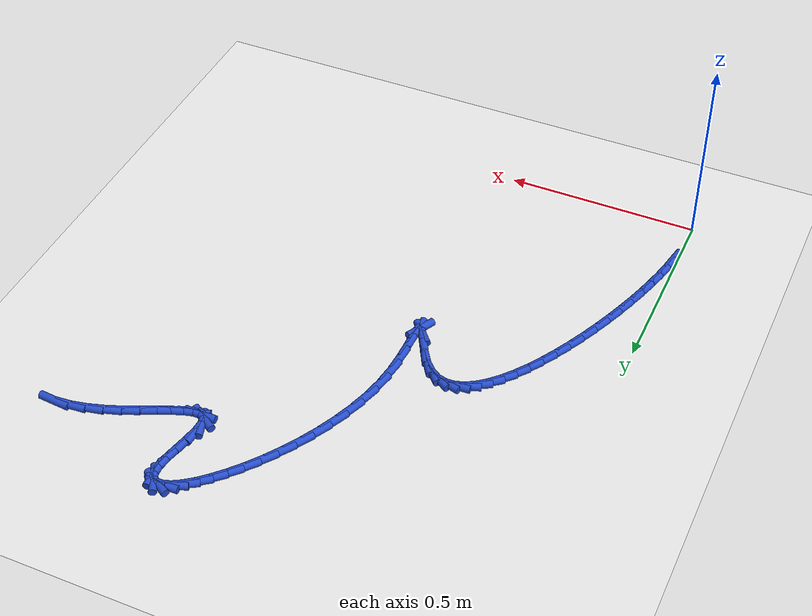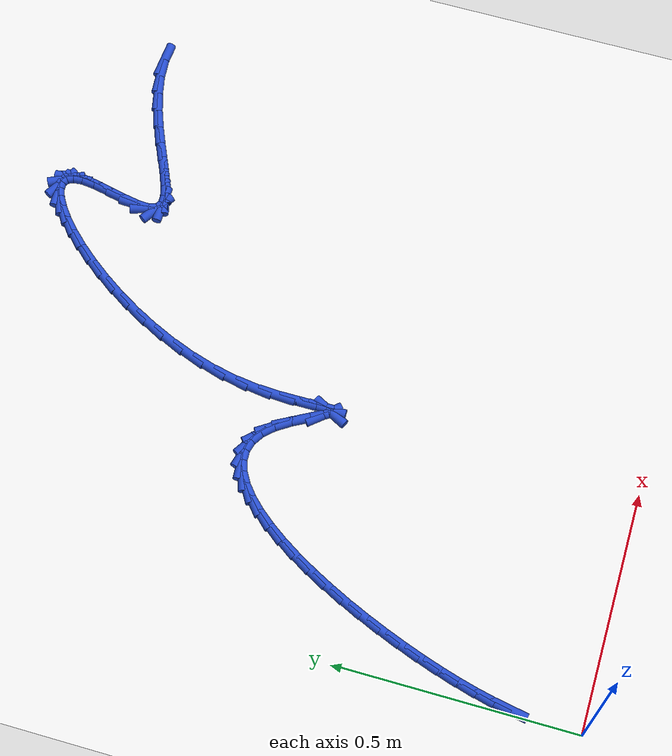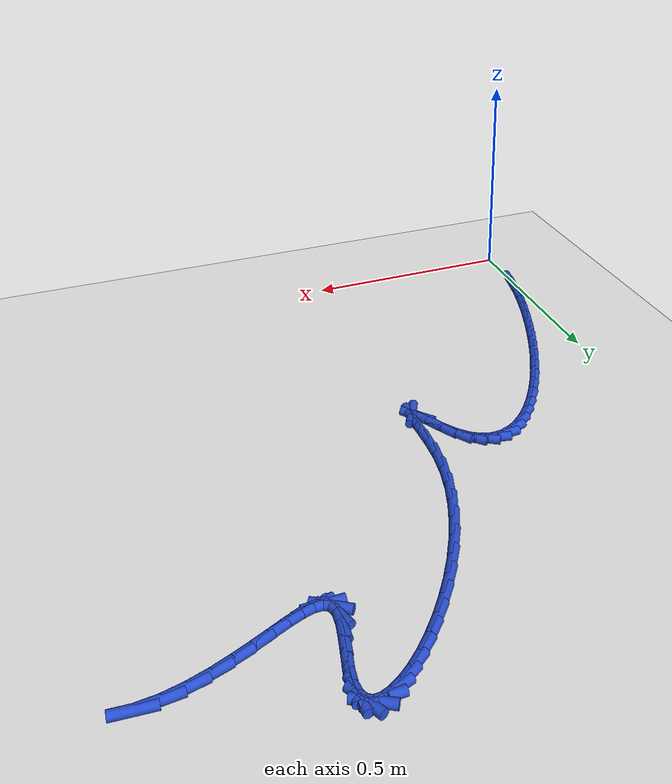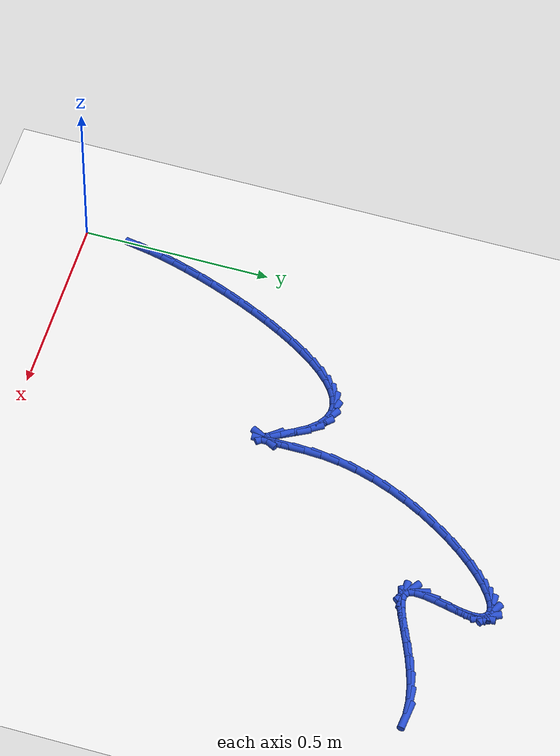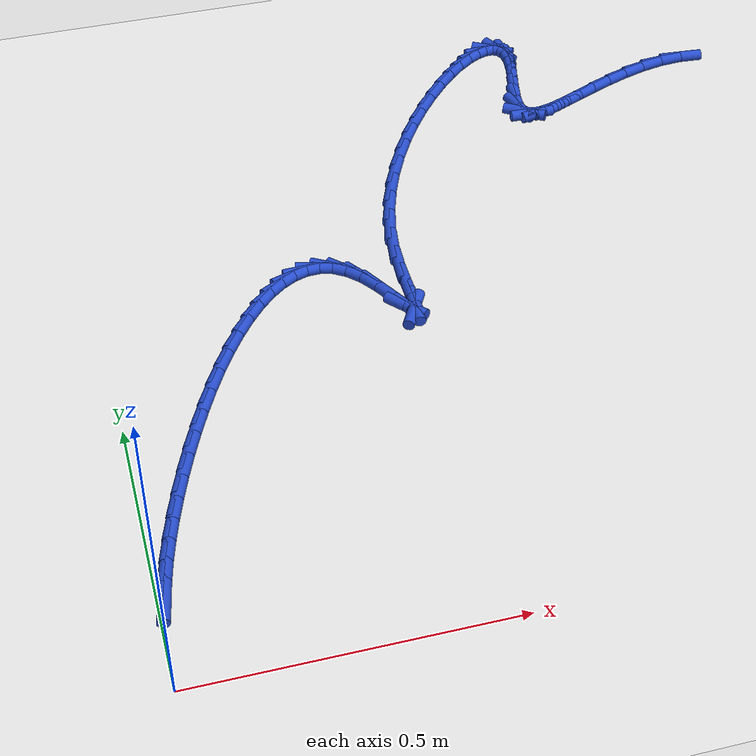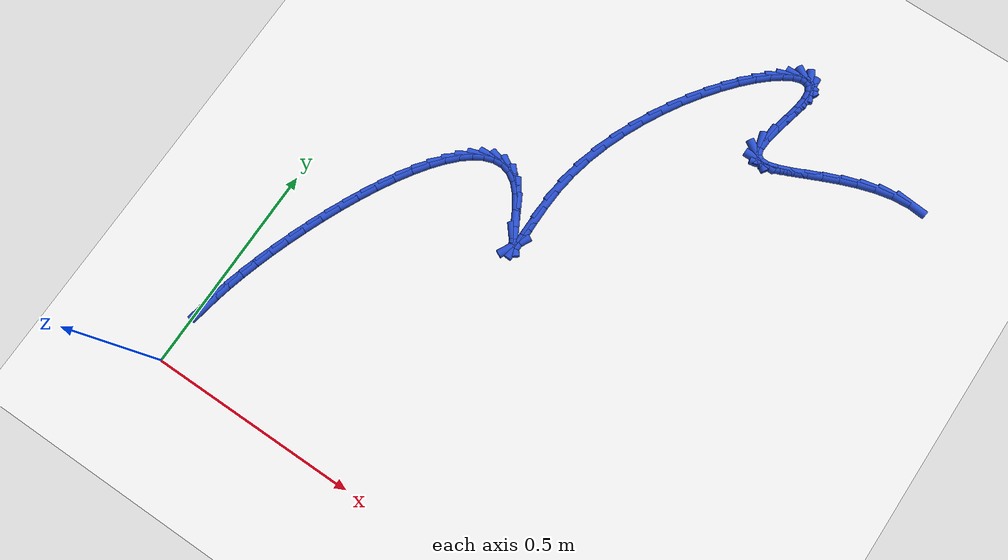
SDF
<sdf version="1.6">
 <world name="default">
  <model name="ground_plane">
   <static>1</static>
   <link name="link">
    <collision name="collision">
     <geometry><plane><normal>0 0 1</normal><size>100 100</size></plane></geometry>
     <surface><friction><ode><mu>100</mu><mu2>50</mu2></ode></friction></surface>
    </collision>
    <visual name="visual">
     <cast_shadows>0</cast_shadows>
     <geometry><plane><normal>0 0 1</normal><size>100 100</size></plane></geometry>
     <material>
      <script><uri>file://media/materials/scripts/gazebo.material</uri><name>Gazebo/WhiteGlow</name></script>
     </material>
    </visual>
   </link>
  </model>
  <model name="line">
   <link name="link_5">
    <pose>0.009515868901466214 0.14836279484983672 0.01 0 1.57 1.389487047491639</pose>
    <collision name="collision">
     <geometry><cylinder><radius>0.01</radius><length>0.08</length></cylinder></geometry>
    </collision>
    <visual name="visual">
     <material>
      <script><name>Gazebo/Blue</name><uri>file://media/materials/scripts/gazebo.material</uri></script>
     </material>
     <geometry><cylinder><radius>0.01</radius><length>0.08</length></cylinder></geometry>
    </visual>
   </link>
   <link name="link_6">
    <pose>0.015477997926737123 0.18088542298722837 0.01 0 1.57 1.3515616071787484</pose>
    <collision name="collision">
     <geometry><cylinder><radius>0.01</radius><length>0.08</length></cylinder></geometry>
    </collision>
    <visual name="visual">
     <material>
      <script><name>Gazebo/Blue</name><uri>file://media/materials/scripts/gazebo.material</uri></script>
     </material>
     <geometry><cylinder><radius>0.01</radius><length>0.08</length></cylinder></geometry>
    </visual>
   </link>
   <link name="link_7">
    <pose>0.023175688321798418 0.21543271781879356 0.01 0 1.57 1.317251080010718</pose>
    <collision name="collision">
     <geometry><cylinder><radius>0.01</radius><length>0.08</length></cylinder></geometry>
    </collision>
    <visual name="visual">
     <material>
      <script><name>Gazebo/Blue</name><uri>file://media/materials/scripts/gazebo.material</uri></script>
     </material>
     <geometry><cylinder><radius>0.01</radius><length>0.08</length></cylinder></geometry>
    </visual>
   </link>
   <link name="link_8">
    <pose>0.03276298747996054 0.25243192385239993 0.01 0 1.57 1.2870819562664837</pose>
    <collision name="collision">
     <geometry><cylinder><radius>0.01</radius><length>0.08</length></cylinder></geometry>
    </collision>
    <visual name="visual">
     <material>
      <script><name>Gazebo/Blue</name><uri>file://media/materials/scripts/gazebo.material</uri></script>
     </material>
     <geometry><cylinder><radius>0.01</radius><length>0.08</length></cylinder></geometry>
    </visual>
   </link>
   <link name="link_9">
    <pose>0.044233916359303134 0.2917724928527456 0.01 0 1.57 1.2598700446901603</pose>
    <collision name="collision">
     <geometry><cylinder><radius>0.01</radius><length>0.08</length></cylinder></geometry>
    </collision>
    <visual name="visual">
     <material>
      <script><name>Gazebo/Blue</name><uri>file://media/materials/scripts/gazebo.material</uri></script>
     </material>
     <geometry><cylinder><radius>0.01</radius><length>0.08</length></cylinder></geometry>
    </visual>
   </link>
   <link name="link_10">
    <pose>0.05745304306028236 0.3329088309165293 0.01 0 1.57 1.2341789606033993</pose>
    <collision name="collision">
     <geometry><cylinder><radius>0.01</radius><length>0.08</length></cylinder></geometry>
    </collision>
    <visual name="visual">
     <material>
      <script><name>Gazebo/Blue</name><uri>file://media/materials/scripts/gazebo.material</uri></script>
     </material>
     <geometry><cylinder><radius>0.01</radius><length>0.08</length></cylinder></geometry>
    </visual>
   </link>
   <link name="link_11">
    <pose>0.07228122282280378 0.3752828665178775 0.01 0 1.57 1.208914437523704</pose>
    <collision name="collision">
     <geometry><cylinder><radius>0.01</radius><length>0.08</length></cylinder></geometry>
    </collision>
    <visual name="visual">
     <material>
      <script><name>Gazebo/Blue</name><uri>file://media/materials/scripts/gazebo.material</uri></script>
     </material>
     <geometry><cylinder><radius>0.01</radius><length>0.08</length></cylinder></geometry>
    </visual>
   </link>
   <link name="link_12">
    <pose>0.08857931088677284 0.4183365281309156 0.01 0 1.57 1.1831471618995162</pose>
    <collision name="collision">
     <geometry><cylinder><radius>0.01</radius><length>0.08</length></cylinder></geometry>
    </collision>
    <visual name="visual">
     <material>
      <script><name>Gazebo/Blue</name><uri>file://media/materials/scripts/gazebo.material</uri></script>
     </material>
     <geometry><cylinder><radius>0.01</radius><length>0.08</length></cylinder></geometry>
    </visual>
   </link>
   <link name="link_13">
    <pose>0.10620816249209507 0.46151174422976954 0.01 0 1.57 1.1559867691599481</pose>
    <collision name="collision">
     <geometry><cylinder><radius>0.01</radius><length>0.08</length></cylinder></geometry>
    </collision>
    <visual name="visual">
     <material>
      <script><name>Gazebo/Blue</name><uri>file://media/materials/scripts/gazebo.material</uri></script>
     </material>
     <geometry><cylinder><radius>0.01</radius><length>0.08</length></cylinder></geometry>
    </visual>
   </link>
   <link name="link_14">
    <pose>0.12502863287867602 0.5042504432885653 0.01 0 1.57 1.1264787319771257</pose>
    <collision name="collision">
     <geometry><cylinder><radius>0.01</radius><length>0.08</length></cylinder></geometry>
    </collision>
    <visual name="visual">
     <material>
      <script><name>Gazebo/Blue</name><uri>file://media/materials/scripts/gazebo.material</uri></script>
     </material>
     <geometry><cylinder><radius>0.01</radius><length>0.08</length></cylinder></geometry>
    </visual>
   </link>
   <link name="link_15">
    <pose>0.14490157728642114 0.5459945537814286 0.01 0 1.57 1.0934982045839046</pose>
    <collision name="collision">
     <geometry><cylinder><radius>0.01</radius><length>0.08</length></cylinder></geometry>
    </collision>
    <visual name="visual">
     <material>
      <script><name>Gazebo/Blue</name><uri>file://media/materials/scripts/gazebo.material</uri></script>
     </material>
     <geometry><cylinder><radius>0.01</radius><length>0.08</length></cylinder></geometry>
    </visual>
   </link>
   <link name="link_16">
    <pose>0.16568785095523597 0.5861860041824855 0.01 0 1.57 1.0556174273168837</pose>
    <collision name="collision">
     <geometry><cylinder><radius>0.01</radius><length>0.08</length></cylinder></geometry>
    </collision>
    <visual name="visual">
     <material>
      <script><name>Gazebo/Blue</name><uri>file://media/materials/scripts/gazebo.material</uri></script>
     </material>
     <geometry><cylinder><radius>0.01</radius><length>0.08</length></cylinder></geometry>
    </visual>
   </link>
   <link name="link_17">
    <pose>0.18724830912502605 0.6242667229658616 0.01 0 1.57 1.0109176820319465</pose>
    <collision name="collision">
     <geometry><cylinder><radius>0.01</radius><length>0.08</length></cylinder></geometry>
    </collision>
    <visual name="visual">
     <material>
      <script><name>Gazebo/Blue</name><uri>file://media/materials/scripts/gazebo.material</uri></script>
     </material>
     <geometry><cylinder><radius>0.01</radius><length>0.08</length></cylinder></geometry>
    </visual>
   </link>
   <link name="link_18">
    <pose>0.2094438070356968 0.6596786386056831 0.01 0 1.57 0.9567030457038551</pose>
    <collision name="collision">
     <geometry><cylinder><radius>0.01</radius><length>0.08</length></cylinder></geometry>
    </collision>
    <visual name="visual">
     <material>
      <script><name>Gazebo/Blue</name><uri>file://media/materials/scripts/gazebo.material</uri></script>
     </material>
     <geometry><cylinder><radius>0.01</radius><length>0.08</length></cylinder></geometry>
    </visual>
   </link>
   <link name="link_19">
    <pose>0.23213519992715384 0.6918636795760756 0.01 0 1.57 0.8890512925944463</pose>
    <collision name="collision">
     <geometry><cylinder><radius>0.01</radius><length>0.08</length></cylinder></geometry>
    </collision>
    <visual name="visual">
     <material>
      <script><name>Gazebo/Blue</name><uri>file://media/materials/scripts/gazebo.material</uri></script>
     </material>
     <geometry><cylinder><radius>0.01</radius><length>0.08</length></cylinder></geometry>
    </visual>
   </link>
   <link name="link_20">
    <pose>0.2551833430393026 0.7202637743511651 0.01 0 1.57 0.8021185245611526</pose>
    <collision name="collision">
     <geometry><cylinder><radius>0.01</radius><length>0.08</length></cylinder></geometry>
    </collision>
    <visual name="visual">
     <material>
      <script><name>Gazebo/Blue</name><uri>file://media/materials/scripts/gazebo.material</uri></script>
     </material>
     <geometry><cylinder><radius>0.01</radius><length>0.08</length></cylinder></geometry>
    </visual>
   </link>
   <link name="link_21">
    <pose>0.27844909161204867 0.7443208514050774 0.01 0 1.57 0.687169390009512</pose>
    <collision name="collision">
     <geometry><cylinder><radius>0.01</radius><length>0.08</length></cylinder></geometry>
    </collision>
    <visual name="visual">
     <material>
      <script><name>Gazebo/Blue</name><uri>file://media/materials/scripts/gazebo.material</uri></script>
     </material>
     <geometry><cylinder><radius>0.01</radius><length>0.08</length></cylinder></geometry>
    </visual>
   </link>
   <link name="link_22">
    <pose>0.3017933008852976 0.7634768392119387 0.01 0 1.57 0.5317443519429484</pose>
    <collision name="collision">
     <geometry><cylinder><radius>0.01</radius><length>0.08</length></cylinder></geometry>
    </collision>
    <visual name="visual">
     <material>
      <script><name>Gazebo/Blue</name><uri>file://media/materials/scripts/gazebo.material</uri></script>
     </material>
     <geometry><cylinder><radius>0.01</radius><length>0.08</length></cylinder></geometry>
    </visual>
   </link>
   <link name="link_23">
    <pose>0.32507682609895466 0.7771736662458741 0.01 0 1.57 0.32116675374424</pose>
    <collision name="collision">
     <geometry><cylinder><radius>0.01</radius><length>0.08</length></cylinder></geometry>
    </collision>
    <visual name="visual">
     <material>
      <script><name>Gazebo/Blue</name><uri>file://media/materials/scripts/gazebo.material</uri></script>
     </material>
     <geometry><cylinder><radius>0.01</radius><length>0.08</length></cylinder></geometry>
    </visual>
   </link>
   <link name="link_24">
    <pose>0.3481605224929256 0.7848532609810102 0.01 0 1.57 0.04851342651883742</pose>
    <collision name="collision">
     <geometry><cylinder><radius>0.01</radius><length>0.08</length></cylinder></geometry>
    </collision>
    <visual name="visual">
     <material>
      <script><name>Gazebo/Blue</name><uri>file://media/materials/scripts/gazebo.material</uri></script>
     </material>
     <geometry><cylinder><radius>0.01</radius><length>0.08</length></cylinder></geometry>
    </visual>
   </link>
   <link name="link_25">
    <pose>0.37090524530711605 0.785957551891473 0.01 0 1.57 -0.2644275330406125</pose>
    <collision name="collision">
     <geometry><cylinder><radius>0.01</radius><length>0.08</length></cylinder></geometry>
    </collision>
    <visual name="visual">
     <material>
      <script><name>Gazebo/Blue</name><uri>file://media/materials/scripts/gazebo.material</uri></script>
     </material>
     <geometry><cylinder><radius>0.01</radius><length>0.08</length></cylinder></geometry>
    </visual>
   </link>
   <link name="link_26">
    <pose>0.39317184978143094 0.7799284674513873 0.01 0 1.57 -0.5648753291209293</pose>
    <collision name="collision">
     <geometry><cylinder><radius>0.01</radius><length>0.08</length></cylinder></geometry>
    </collision>
    <visual name="visual">
     <material>
      <script><name>Gazebo/Blue</name><uri>file://media/materials/scripts/gazebo.material</uri></script>
     </material>
     <geometry><cylinder><radius>0.01</radius><length>0.08</length></cylinder></geometry>
    </visual>
   </link>
   <link name="link_27">
    <pose>0.4148211911557764 0.7662079361348799 0.01 0 1.57 -0.8105221627786867</pose>
    <collision name="collision">
     <geometry><cylinder><radius>0.01</radius><length>0.08</length></cylinder></geometry>
    </collision>
    <visual name="visual">
     <material>
      <script><name>Gazebo/Blue</name><uri>file://media/materials/scripts/gazebo.material</uri></script>
     </material>
     <geometry><cylinder><radius>0.01</radius><length>0.08</length></cylinder></geometry>
    </visual>
   </link>
   <link name="link_28">
    <pose>0.43571412467005766 0.7442378864160764 0.01 0 1.57 -0.9883571259702624</pose>
    <collision name="collision">
     <geometry><cylinder><radius>0.01</radius><length>0.08</length></cylinder></geometry>
    </collision>
    <visual name="visual">
     <material>
      <script><name>Gazebo/Blue</name><uri>file://media/materials/scripts/gazebo.material</uri></script>
     </material>
     <geometry><cylinder><radius>0.01</radius><length>0.08</length></cylinder></geometry>
    </visual>
   </link>
   <link name="link_29">
    <pose>0.4556354778369066 0.7139926225326337 0.01 0 1.57 -1.0718815724279143</pose>
    <collision name="collision">
     <geometry><cylinder><radius>0.01</radius><length>0.08</length></cylinder></geometry>
    </collision>
    <visual name="visual">
     <material>
      <script><name>Gazebo/Blue</name><uri>file://media/materials/scripts/gazebo.material</uri></script>
     </material>
     <geometry><cylinder><radius>0.01</radius><length>0.08</length></cylinder></geometry>
    </visual>
   </link>
   <link name="link_30">
    <pose>0.4735642048301116 0.6810894877746496 0.01 0 1.57 -1.0729017904365235</pose>
    <collision name="collision">
     <geometry><cylinder><radius>0.01</radius><length>0.08</length></cylinder></geometry>
    </collision>
    <visual name="visual">
     <material>
      <script><name>Gazebo/Blue</name><uri>file://media/materials/scripts/gazebo.material</uri></script>
     </material>
     <geometry><cylinder><radius>0.01</radius><length>0.08</length></cylinder></geometry>
    </visual>
   </link>
   <link name="link_31">
    <pose>0.48799411048581626 0.6545430300878968 0.01 0 1.57 -0.8707929391712592</pose>
    <collision name="collision">
     <geometry><cylinder><radius>0.01</radius><length>0.08</length></cylinder></geometry>
    </collision>
    <visual name="visual">
     <material>
      <script><name>Gazebo/Blue</name><uri>file://media/materials/scripts/gazebo.material</uri></script>
     </material>
     <geometry><cylinder><radius>0.01</radius><length>0.08</length></cylinder></geometry>
    </visual>
   </link>
   <link name="link_32">
    <pose>0.4974334274465043 0.6433363551747635 0.01 0 1.57 1.0992074477734581</pose>
    <collision name="collision">
     <geometry><cylinder><radius>0.01</radius><length>0.08</length></cylinder></geometry>
    </collision>
    <visual name="visual">
     <material>
      <script><name>Gazebo/Blue</name><uri>file://media/materials/scripts/gazebo.material</uri></script>
     </material>
     <geometry><cylinder><radius>0.01</radius><length>0.08</length></cylinder></geometry>
    </visual>
   </link>
   <link name="link_33">
    <pose>0.5016825819778292 0.651668580165561 0.01 0 1.57 1.5351149611878014</pose>
    <collision name="collision">
     <geometry><cylinder><radius>0.01</radius><length>0.08</length></cylinder></geometry>
    </collision>
    <visual name="visual">
     <material>
      <script><name>Gazebo/Blue</name><uri>file://media/materials/scripts/gazebo.material</uri></script>
     </material>
     <geometry><cylinder><radius>0.01</radius><length>0.08</length></cylinder></geometry>
    </visual>
   </link>
   <link name="link_34">
    <pose>0.5025606061098845 0.6762654940952952 0.01 0 1.57 -1.5572992215891486</pose>
    <collision name="collision">
     <geometry><cylinder><radius>0.01</radius><length>0.08</length></cylinder></geometry>
    </collision>
    <visual name="visual">
     <material>
      <script><name>Gazebo/Blue</name><uri>file://media/materials/scripts/gazebo.material</uri></script>
     </material>
     <geometry><cylinder><radius>0.01</radius><length>0.08</length></cylinder></geometry>
    </visual>
   </link>
   <link name="link_35">
    <pose>0.5020620240711536 0.7132031747973943 0.01 0 1.57 1.5681651506826115</pose>
    <collision name="collision">
     <geometry><cylinder><radius>0.01</radius><length>0.08</length></cylinder></geometry>
    </collision>
    <visual name="visual">
     <material>
      <script><name>Gazebo/Blue</name><uri>file://media/materials/scripts/gazebo.material</uri></script>
     </material>
     <geometry><cylinder><radius>0.01</radius><length>0.08</length></cylinder></geometry>
    </visual>
   </link>
   <link name="link_36">
    <pose>0.5021813600901192 0.7585577001052859 0.01 0 1.57 1.5160483201674366</pose>
    <collision name="collision">
     <geometry><cylinder><radius>0.01</radius><length>0.08</length></cylinder></geometry>
    </collision>
    <visual name="visual">
     <material>
      <script><name>Gazebo/Blue</name><uri>file://media/materials/scripts/gazebo.material</uri></script>
     </material>
     <geometry><cylinder><radius>0.01</radius><length>0.08</length></cylinder></geometry>
    </visual>
   </link>
   <link name="link_37">
    <pose>0.5049131383952644 0.8084051478523981 0.01 0 1.57 1.432313511323994</pose>
    <collision name="collision">
     <geometry><cylinder><radius>0.01</radius><length>0.08</length></cylinder></geometry>
    </collision>
    <visual name="visual">
     <material>
      <script><name>Gazebo/Blue</name><uri>file://media/materials/scripts/gazebo.material</uri></script>
     </material>
     <geometry><cylinder><radius>0.01</radius><length>0.08</length></cylinder></geometry>
    </visual>
   </link>
   <link name="link_38">
    <pose>0.5119899636487898 0.8591806083599576 0.01 0 1.57 1.3463404895163555</pose>
    <collision name="collision">
     <geometry><cylinder><radius>0.01</radius><length>0.08</length></cylinder></geometry>
    </collision>
    <visual name="visual">
     <material>
      <script><name>Gazebo/Blue</name><uri>file://media/materials/scripts/gazebo.material</uri></script>
     </material>
     <geometry><cylinder><radius>0.01</radius><length>0.08</length></cylinder></geometry>
    </visual>
   </link>
   <link name="link_39">
    <pose>0.5234959880895468 0.9095787015212802 0.01 0 1.57 1.270078652641686</pose>
    <collision name="collision">
     <geometry><cylinder><radius>0.01</radius><length>0.08</length></cylinder></geometry>
    </collision>
    <visual name="visual">
     <material>
      <script><name>Gazebo/Blue</name><uri>file://media/materials/scripts/gazebo.material</uri></script>
     </material>
     <geometry><cylinder><radius>0.01</radius><length>0.08</length></cylinder></geometry>
    </visual>
   </link>
   <link name="link_40">
    <pose>0.5388756560525543 0.9591708932373276 0.01 0 1.57 1.201886004252048</pose>
    <collision name="collision">
     <geometry><cylinder><radius>0.01</radius><length>0.08</length></cylinder></geometry>
    </collision>
    <visual name="visual">
     <material>
      <script><name>Gazebo/Blue</name><uri>file://media/materials/scripts/gazebo.material</uri></script>
     </material>
     <geometry><cylinder><radius>0.01</radius><length>0.08</length></cylinder></geometry>
    </visual>
   </link>
   <link name="link_41">
    <pose>0.5575720002904395 1.0075305842614835 0.01 0 1.57 1.1401210553718055</pose>
    <collision name="collision">
     <geometry><cylinder><radius>0.01</radius><length>0.08</length></cylinder></geometry>
    </collision>
    <visual name="visual">
     <material>
      <script><name>Gazebo/Blue</name><uri>file://media/materials/scripts/gazebo.material</uri></script>
     </material>
     <geometry><cylinder><radius>0.01</radius><length>0.08</length></cylinder></geometry>
    </visual>
   </link>
   <link name="link_42">
    <pose>0.5790280535558285 1.054231175347129 0.01 0 1.57 1.0832120006053216</pose>
    <collision name="collision">
     <geometry><cylinder><radius>0.01</radius><length>0.08</length></cylinder></geometry>
    </collision>
    <visual name="visual">
     <material>
      <script><name>Gazebo/Blue</name><uri>file://media/materials/scripts/gazebo.material</uri></script>
     </material>
     <geometry><cylinder><radius>0.01</radius><length>0.08</length></cylinder></geometry>
    </visual>
   </link>
   <link name="link_43">
    <pose>0.6026868486013476 1.0988460672476459 0.01 0 1.57 1.0296259626467044</pose>
    <collision name="collision">
     <geometry><cylinder><radius>0.01</radius><length>0.08</length></cylinder></geometry>
    </collision>
    <visual name="visual">
     <material>
      <script><name>Gazebo/Blue</name><uri>file://media/materials/scripts/gazebo.material</uri></script>
     </material>
     <geometry><cylinder><radius>0.01</radius><length>0.08</length></cylinder></geometry>
    </visual>
   </link>
   <link name="link_44">
    <pose>0.6279914181796239 1.1409486607164168 0.01 0 1.57 0.9777858380400524</pose>
    <collision name="collision">
     <geometry><cylinder><radius>0.01</radius><length>0.08</length></cylinder></geometry>
    </collision>
    <visual name="visual">
     <material>
      <script><name>Gazebo/Blue</name><uri>file://media/materials/scripts/gazebo.material</uri></script>
     </material>
     <geometry><cylinder><radius>0.01</radius><length>0.08</length></cylinder></geometry>
    </visual>
   </link>
   <link name="link_45">
    <pose>0.6543847950432836 1.1801123565068234 0.01 0 1.57 0.9259277449278839</pose>
    <collision name="collision">
     <geometry><cylinder><radius>0.01</radius><length>0.08</length></cylinder></geometry>
    </collision>
    <visual name="visual">
     <material>
      <script><name>Gazebo/Blue</name><uri>file://media/materials/scripts/gazebo.material</uri></script>
     </material>
     <geometry><cylinder><radius>0.01</radius><length>0.08</length></cylinder></geometry>
    </visual>
   </link>
   <link name="link_46">
    <pose>0.6813100119449528 1.2159105553722473 0.01 0 1.57 0.8718624575269105</pose>
    <collision name="collision">
     <geometry><cylinder><radius>0.01</radius><length>0.08</length></cylinder></geometry>
    </collision>
    <visual name="visual">
     <material>
      <script><name>Gazebo/Blue</name><uri>file://media/materials/scripts/gazebo.material</uri></script>
     </material>
     <geometry><cylinder><radius>0.01</radius><length>0.08</length></cylinder></geometry>
    </visual>
   </link>
   <link name="link_47">
    <pose>0.7082101016372588 1.2479166580660719 0.01 0 1.57 0.8125498130418877</pose>
    <collision name="collision">
     <geometry><cylinder><radius>0.01</radius><length>0.08</length></cylinder></geometry>
    </collision>
    <visual name="visual">
     <material>
      <script><name>Gazebo/Blue</name><uri>file://media/materials/scripts/gazebo.material</uri></script>
     </material>
     <geometry><cylinder><radius>0.01</radius><length>0.08</length></cylinder></geometry>
    </visual>
   </link>
   <link name="link_48">
    <pose>0.7345280968728276 1.275704065341678 0.01 0 1.57 0.7432712633868042</pose>
    <collision name="collision">
     <geometry><cylinder><radius>0.01</radius><length>0.08</length></cylinder></geometry>
    </collision>
    <visual name="visual">
     <material>
      <script><name>Gazebo/Blue</name><uri>file://media/materials/scripts/gazebo.material</uri></script>
     </material>
     <geometry><cylinder><radius>0.01</radius><length>0.08</length></cylinder></geometry>
    </visual>
   </link>
   <link name="link_49">
    <pose>0.759707030404286 1.2988461779524478 0.01 0 1.57 0.6558680557648784</pose>
    <collision name="collision">
     <geometry><cylinder><radius>0.01</radius><length>0.08</length></cylinder></geometry>
    </collision>
    <visual name="visual">
     <material>
      <script><name>Gazebo/Blue</name><uri>file://media/materials/scripts/gazebo.material</uri></script>
     </material>
     <geometry><cylinder><radius>0.01</radius><length>0.08</length></cylinder></geometry>
    </visual>
   </link>
   <link name="link_50">
    <pose>0.78318993498426 1.3169163966517636 0.01 0 1.57 0.5346426273832897</pose>
    <collision name="collision">
     <geometry><cylinder><radius>0.01</radius><length>0.08</length></cylinder></geometry>
    </collision>
    <visual name="visual">
     <material>
      <script><name>Gazebo/Blue</name><uri>file://media/materials/scripts/gazebo.material</uri></script>
     </material>
     <geometry><cylinder><radius>0.01</radius><length>0.08</length></cylinder></geometry>
    </visual>
   </link>
   <link name="link_51">
    <pose>0.8044198433653768 1.3294881221930075 0.01 0 1.57 0.3462980567022738</pose>
    <collision name="collision">
     <geometry><cylinder><radius>0.01</radius><length>0.08</length></cylinder></geometry>
    </collision>
    <visual name="visual">
     <material>
      <script><name>Gazebo/Blue</name><uri>file://media/materials/scripts/gazebo.material</uri></script>
     </material>
     <geometry><cylinder><radius>0.01</radius><length>0.08</length></cylinder></geometry>
    </visual>
   </link>
   <link name="link_52">
    <pose>0.8228397883002623 1.336134755329561 0.01 0 1.57 0.01959100987693563</pose>
    <collision name="collision">
     <geometry><cylinder><radius>0.01</radius><length>0.08</length></cylinder></geometry>
    </collision>
    <visual name="visual">
     <material>
      <script><name>Gazebo/Blue</name><uri>file://media/materials/scripts/gazebo.material</uri></script>
     </material>
     <geometry><cylinder><radius>0.01</radius><length>0.08</length></cylinder></geometry>
    </visual>
   </link>
   <link name="link_53">
    <pose>0.8378928025415433 1.3364296968148064 0.01 0 1.57 -0.5274953421119011</pose>
    <collision name="collision">
     <geometry><cylinder><radius>0.01</radius><length>0.08</length></cylinder></geometry>
    </collision>
    <visual name="visual">
     <material>
      <script><name>Gazebo/Blue</name><uri>file://media/materials/scripts/gazebo.material</uri></script>
     </material>
     <geometry><cylinder><radius>0.01</radius><length>0.08</length></cylinder></geometry>
    </visual>
   </link>
   <link name="link_54">
    <pose>0.8490219188418462 1.329946347402126 0.01 0 1.57 -1.11866152106982</pose>
    <collision name="collision">
     <geometry><cylinder><radius>0.01</radius><length>0.08</length></cylinder></geometry>
    </collision>
    <visual name="visual">
     <material>
      <script><name>Gazebo/Blue</name><uri>file://media/materials/scripts/gazebo.material</uri></script>
     </material>
     <geometry><cylinder><radius>0.01</radius><length>0.08</length></cylinder></geometry>
    </visual>
   </link>
   <link name="link_55">
    <pose>0.8556701699537981 1.3162581078449018 0.01 0 1.57 -1.4954029561490114</pose>
    <collision name="collision">
     <geometry><cylinder><radius>0.01</radius><length>0.08</length></cylinder></geometry>
    </collision>
    <visual name="visual">
     <material>
      <script><name>Gazebo/Blue</name><uri>file://media/materials/scripts/gazebo.material</uri></script>
     </material>
     <geometry><cylinder><radius>0.01</radius><length>0.08</length></cylinder></geometry>
    </visual>
   </link>
   <link name="link_56">
    <pose>0.8572805886300243 1.2949383788965152 0.01 0 1.57 1.4472860149760578</pose>
    <collision name="collision">
     <geometry><cylinder><radius>0.01</radius><length>0.08</length></cylinder></geometry>
    </collision>
    <visual name="visual">
     <material>
      <script><name>Gazebo/Blue</name><uri>file://media/materials/scripts/gazebo.material</uri></script>
     </material>
     <geometry><cylinder><radius>0.01</radius><length>0.08</length></cylinder></geometry>
    </visual>
   </link>
   <link name="link_57">
    <pose>0.853699308425175 1.2660901715049848 0.01 0 1.57 1.36878192493172</pose>
    <collision name="collision">
     <geometry><cylinder><radius>0.01</radius><length>0.08</length></cylinder></geometry>
    </collision>
    <visual name="visual">
     <material>
      <script><name>Gazebo/Blue</name><uri>file://media/materials/scripts/gazebo.material</uri></script>
     </material>
     <geometry><cylinder><radius>0.01</radius><length>0.08</length></cylinder></geometry>
    </visual>
   </link>
   <link name="link_58">
    <pose>0.8468215444637746 1.2325086631523583 0.01 0 1.57 1.3541646240603578</pose>
    <collision name="collision">
     <geometry><cylinder><radius>0.01</radius><length>0.08</length></cylinder></geometry>
    </collision>
    <visual name="visual">
     <material>
      <script><name>Gazebo/Blue</name><uri>file://media/materials/scripts/gazebo.material</uri></script>
     </material>
     <geometry><cylinder><radius>0.01</radius><length>0.08</length></cylinder></geometry>
    </visual>
   </link>
   <link name="link_59">
    <pose>0.8391919976442083 1.1978423520915233 0.01 0 1.57 1.3909551552863428</pose>
    <collision name="collision">
     <geometry><cylinder><radius>0.01</radius><length>0.08</length></cylinder></geometry>
    </collision>
    <visual name="visual">
     <material>
      <script><name>Gazebo/Blue</name><uri>file://media/materials/scripts/gazebo.material</uri></script>
     </material>
     <geometry><cylinder><radius>0.01</radius><length>0.08</length></cylinder></geometry>
    </visual>
   </link>
   <link name="link_60">
    <pose>0.8333556295895955 1.1657400791261041 0.01 0 1.57 1.512990473687629</pose>
    <collision name="collision">
     <geometry><cylinder><radius>0.01</radius><length>0.08</length></cylinder></geometry>
    </collision>
    <visual name="visual">
     <material>
      <script><name>Gazebo/Blue</name><uri>file://media/materials/scripts/gazebo.material</uri></script>
     </material>
     <geometry><cylinder><radius>0.01</radius><length>0.08</length></cylinder></geometry>
    </visual>
   </link>
   <link name="link_61">
    <pose>0.8318574019230558 1.1398506850597259 0.01 0 1.57 -1.2786434181935535</pose>
    <collision name="collision">
     <geometry><cylinder><radius>0.01</radius><length>0.08</length></cylinder></geometry>
    </collision>
    <visual name="visual">
     <material>
      <script><name>Gazebo/Blue</name><uri>file://media/materials/scripts/gazebo.material</uri></script>
     </material>
     <geometry><cylinder><radius>0.01</radius><length>0.08</length></cylinder></geometry>
    </visual>
   </link>
   <link name="link_62">
    <pose>0.8368602881402679 1.1232164779439235 0.01 0 1.57 -0.5853457247802646</pose>
    <collision name="collision">
     <geometry><cylinder><radius>0.01</radius><length>0.08</length></cylinder></geometry>
    </collision>
    <visual name="visual">
     <material>
      <script><name>Gazebo/Blue</name><uri>file://media/materials/scripts/gazebo.material</uri></script>
     </material>
     <geometry><cylinder><radius>0.01</radius><length>0.08</length></cylinder></geometry>
    </visual>
   </link>
   <link name="link_63">
    <pose>0.8484291077323959 1.1155482509708774 0.01 0 1.57 -0.00739623432070604</pose>
    <collision name="collision">
     <geometry><cylinder><radius>0.01</radius><length>0.08</length></cylinder></geometry>
    </collision>
    <visual name="visual">
     <material>
      <script><name>Gazebo/Blue</name><uri>file://media/materials/scripts/gazebo.material</uri></script>
     </material>
     <geometry><cylinder><radius>0.01</radius><length>0.08</length></cylinder></geometry>
    </visual>
   </link>
   <link name="link_64">
    <pose>0.865912069607281 1.1154189405302772 0.01 0 1.57 0.25716398750181846</pose>
    <collision name="collision">
     <geometry><cylinder><radius>0.01</radius><length>0.08</length></cylinder></geometry>
    </collision>
    <visual name="visual">
     <material>
      <script><name>Gazebo/Blue</name><uri>file://media/materials/scripts/gazebo.material</uri></script>
     </material>
     <geometry><cylinder><radius>0.01</radius><length>0.08</length></cylinder></geometry>
    </visual>
   </link>
   <link name="link_65">
    <pose>0.8886567650420863 1.1214005023184133 0.01 0 1.57 0.371739354481343</pose>
    <collision name="collision">
     <geometry><cylinder><radius>0.01</radius><length>0.08</length></cylinder></geometry>
    </collision>
    <visual name="visual">
     <material>
      <script><name>Gazebo/Blue</name><uri>file://media/materials/scripts/gazebo.material</uri></script>
     </material>
     <geometry><cylinder><radius>0.01</radius><length>0.08</length></cylinder></geometry>
    </visual>
   </link>
   <link name="link_66">
    <pose>0.9160107853139746 1.132064892031576 0.01 0 1.57 0.4183097120679799</pose>
    <collision name="collision">
     <geometry><cylinder><radius>0.01</radius><length>0.08</length></cylinder></geometry>
    </collision>
    <visual name="visual">
     <material>
      <script><name>Gazebo/Blue</name><uri>file://media/materials/scripts/gazebo.material</uri></script>
     </material>
     <geometry><cylinder><radius>0.01</radius><length>0.08</length></cylinder></geometry>
    </visual>
   </link>
   <link name="link_67">
    <pose>0.9473217217001088 1.1459840653660551 0.01 0 1.57 0.4269056660025699</pose>
    <collision name="collision">
     <geometry><cylinder><radius>0.01</radius><length>0.08</length></cylinder></geometry>
    </collision>
    <visual name="visual">
     <material>
      <script><name>Gazebo/Blue</name><uri>file://media/materials/scripts/gazebo.material</uri></script>
     </material>
     <geometry><cylinder><radius>0.01</radius><length>0.08</length></cylinder></geometry>
    </visual>
   </link>
   <link name="link_68">
    <pose>0.9819371654776529 1.1617299780181425 0.01 0 1.57 0.40880253399688626</pose>
    <collision name="collision">
     <geometry><cylinder><radius>0.01</radius><length>0.08</length></cylinder></geometry>
    </collision>
    <visual name="visual">
     <material>
      <script><name>Gazebo/Blue</name><uri>file://media/materials/scripts/gazebo.material</uri></script>
     </material>
     <geometry><cylinder><radius>0.01</radius><length>0.08</length></cylinder></geometry>
    </visual>
   </link>
   <link name="link_69">
    <pose>1.0192047079237687 1.1778745856841268 0.01 0 1.57 0.36745059662043017</pose>
    <collision name="collision">
     <geometry><cylinder><radius>0.01</radius><length>0.08</length></cylinder></geometry>
    </collision>
    <visual name="visual">
     <material>
      <script><name>Gazebo/Blue</name><uri>file://media/materials/scripts/gazebo.material</uri></script>
     </material>
     <geometry><cylinder><radius>0.01</radius><length>0.08</length></cylinder></geometry>
    </visual>
   </link>
   <link name="link_70">
    <pose>1.0584719403156189 1.1929898440602997 0.01 0 1.57 0.3021181947966258</pose>
    <collision name="collision">
     <geometry><cylinder><radius>0.01</radius><length>0.08</length></cylinder></geometry>
    </collision>
    <visual name="visual">
     <material>
      <script><name>Gazebo/Blue</name><uri>file://media/materials/scripts/gazebo.material</uri></script>
     </material>
     <geometry><cylinder><radius>0.01</radius><length>0.08</length></cylinder></geometry>
    </visual>
   </link>
   <link name="link_71">
    <pose>1.0990864539303677 1.2056477088429507 0.01 0 1.57 0.20925064223080006</pose>
    <collision name="collision">
     <geometry><cylinder><radius>0.01</radius><length>0.08</length></cylinder></geometry>
    </collision>
    <visual name="visual">
     <material>
      <script><name>Gazebo/Blue</name><uri>file://media/materials/scripts/gazebo.material</uri></script>
     </material>
     <geometry><cylinder><radius>0.01</radius><length>0.08</length></cylinder></geometry>
    </visual>
   </link>
   <link name="link_72">
    <pose>1.140395840045178 1.2144201357283713 0.01 0 1.57 0.0834524029597507</pose>
    <collision name="collision">
     <geometry><cylinder><radius>0.01</radius><length>0.08</length></cylinder></geometry>
    </collision>
    <visual name="visual">
     <material>
      <script><name>Gazebo/Blue</name><uri>file://media/materials/scripts/gazebo.material</uri></script>
     </material>
     <geometry><cylinder><radius>0.01</radius><length>0.08</length></cylinder></geometry>
    </visual>
   </link>
   <link name="link_73">
    <pose>1.181747689937212 1.2178790804128508 0.01 0 1.57 -0.08039649464325481</pose>
    <collision name="collision">
     <geometry><cylinder><radius>0.01</radius><length>0.08</length></cylinder></geometry>
    </collision>
    <visual name="visual">
     <material>
      <script><name>Gazebo/Blue</name><uri>file://media/materials/scripts/gazebo.material</uri></script>
     </material>
     <geometry><cylinder><radius>0.01</radius><length>0.08</length></cylinder></geometry>
    </visual>
   </link>
  </model>
 </world>
</sdf>
